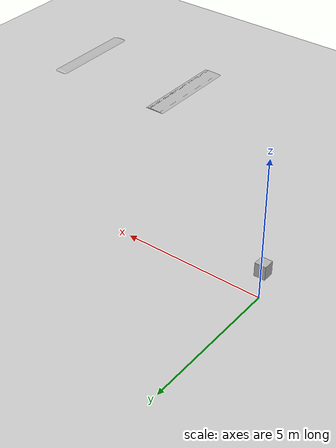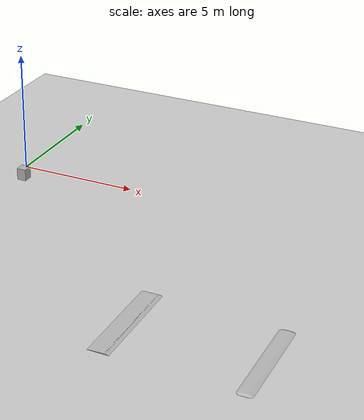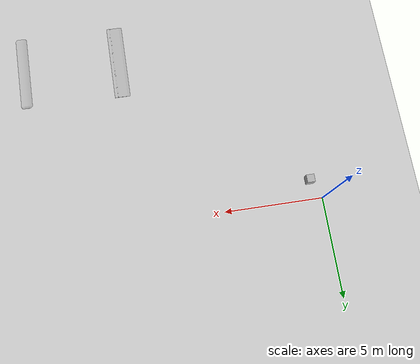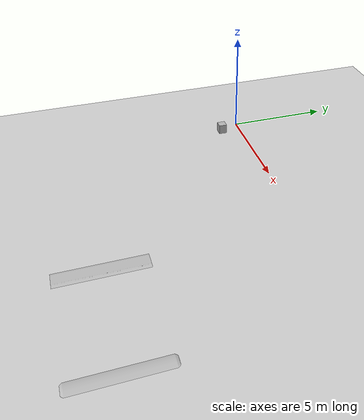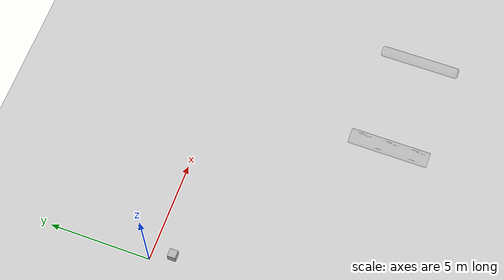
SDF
<sdf version="1.7">
 <world name="default">
  <model name="ground_plane">
   <static>1</static>
   <link name="link">
    <collision name="collision">
     <geometry><plane><normal>0 0 1</normal><size>100 100</size></plane></geometry>
     <surface><friction><ode><mu>100</mu><mu2>50</mu2></ode></friction></surface>
    </collision>
    <visual name="visual">
     <cast_shadows>0</cast_shadows>
     <geometry><plane><normal>0 0 1</normal><size>100 100</size></plane></geometry>
     <material>
      <script><uri>file://media/materials/scripts/gazebo.material</uri><name>Gazebo/Grey</name></script>
     </material>
    </visual>
   </link>
  </model>
  <model name="speed_bump_2_short">
   <static>1</static>
   <link name="link">
    <collision name="collision">
     <geometry><mesh><uri>model://speed_bump_2_short//bump_1_060.dae</uri></mesh></geometry>
     <surface><friction><ode><mu>0.9</mu><mu2>0.6</mu2></ode></friction></surface>
    </collision>
    <visual name="visual">
     <geometry><mesh><uri>model://speed_bump_2_short//bump_1_060.dae</uri></mesh></geometry>
    </visual>
   </link>
   <pose>9.72068 -10.8812 0 0 -0 1.57001</pose>
  </model>
  <model name="speed_bump_3_short">
   <static>1</static>
   <link name="link">
    <collision name="collision">
     <geometry><mesh><uri>model://speed_bump_3_short//bump_3_060.dae</uri></mesh></geometry>
     <surface><friction><ode><mu>0.9</mu><mu2>0.6</mu2></ode></friction></surface>
    </collision>
    <visual name="visual">
     <geometry><mesh><uri>model://speed_bump_3_short//bump_3_060.dae</uri></mesh></geometry>
    </visual>
   </link>
   <pose>14.689 -10.9598 0 0 -0 1.57268</pose>
  </model>
  <model name="obstacle_cube_1">
   <static>true</static>
   <pose>0.5 -1.0 0.25 0 0 0</pose>
   <link name="link">
    <visual name="visual">
     <geometry><box><size>0.4 0.4 0.5</size></box></geometry>
     <material>
      <ambient>0.7 0.7 0.7 1</ambient>
      <diffuse>0.7 0.7 0.7 1</diffuse>
      <specular>0.1 0.1 0.1 1</specular>
      <emissive>0 0 0 1</emissive>
     </material>
    </visual>
    <collision name="collision"><geometry><box><size>0.4 0.4 0.5</size></box></geometry></collision>
   </link>
  </model>
 </world>
</sdf>
